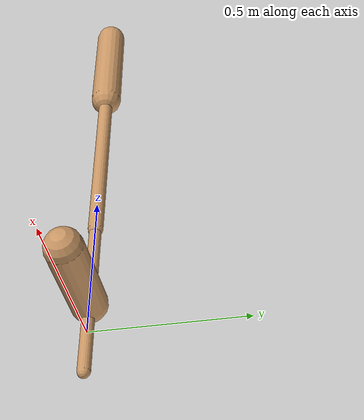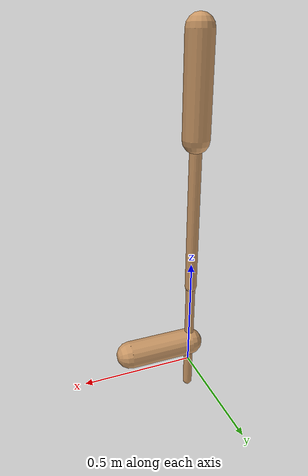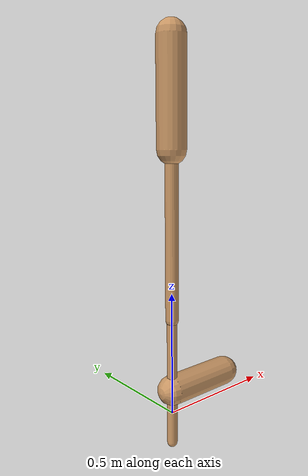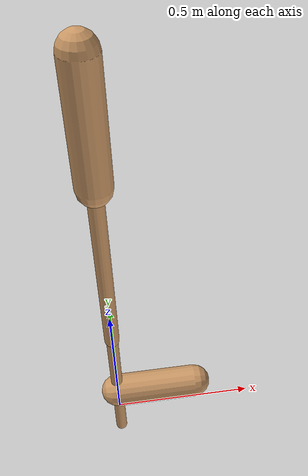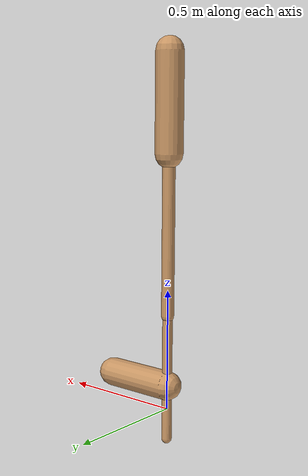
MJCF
<mujoco model="walker2d">
  <compiler angle="degree" coordinate="global" inertiafromgeom="true" />
  <default>
    <joint armature="0.01" damping=".1" limited="true" />
    <geom conaffinity="0" condim="3" contype="1" density="1000" friction="0.8 .1 .1" rgba="0.8 0.6 .4 1" />
  </default>
  <option integrator="RK4" timestep="0.002" />
  <worldbody>

    <body name="torso" pos="0 0 0.4336802725712084">
      <joint armature="0" axis="1 0 0" damping="0" limited="false" name="ignorex" pos="0 0 0" stiffness="0" type="slide" />
      <joint armature="0" axis="0 0 1" damping="0" limited="false" name="ignorez" pos="0 0 0" ref="1.25" stiffness="0" type="slide" />
      <joint armature="0" axis="0 1 0" damping="0" limited="false" name="ignorey" pos="0 0 0" stiffness="0" type="hinge" />
      <geom fromto="0 0 1.45 0 0 1.05" name="torso_geom" size="0.056566294980095556" type="capsule" />
      <body name="thigh">
        <joint axis="0 -1 0" name="thigh_joint" pos="0 0 1.05" range="-150 0" type="hinge" />
        <geom fromto="0.0 0.0 1.05 0.0 0.0 0.3945725024662696" name="thigh_geom" size="0.02587641546885851" type="capsule" />
        <body name="leg" pos="0.0 0.0 -0.20542749753373035">
          <joint axis="0 -1 0" name="leg_joint" pos="0 0 0.6" range="-150 0" type="hinge" />
          <geom fromto="0.0 0.0 0.6 0.0 0.0 -0.1282527750374781" name="leg_geom" size="0.02070113237508681" type="capsule" />
          <body name="foot" pos="0.0 0.0 -0.2282527750374781">
            <joint axis="0 -1 0" name="foot_joint" pos="0 0 0.1" range="-45 45" type="hinge" />
            <geom fromto="-0.0 0.0 0.1 0.2904661562101304 0.0 0.1" name="foot_geom" size="0.05999046526558192" type="capsule" />
          </body>
        </body>
      </body>

      <body name="thigh_left">
        <joint axis="0 -1 0" name="thigh_left_joint" pos="0 0 1.05" range="-150 0" type="hinge" />
        <geom fromto="0.0 0.0 1.05 0.0 0.0 0.3945725024662696" name="thigh_left_geom" rgba=".7 .3 .6 1" size="0.02587641546885851" type="capsule" />
        <body name="leg_left" pos="0.0 0.0 -0.20542749753373035">
          <joint axis="0 -1 0" name="leg_left_joint" pos="0 0 0.6" range="-150 0" type="hinge" />
          <geom fromto="0.0 0.0 0.6 0.0 0.0 -0.1282527750374781" name="leg_left_geom" rgba=".7 .3 .6 1" size="0.02070113237508681" type="capsule" />
          <body name="foot_left" pos="0.0 0.0 -0.2282527750374781">
            <joint axis="0 -1 0" name="foot_left_joint" pos="0 0 0.1" range="-45 45" type="hinge" />
            <geom fromto="-0.0 0.0 0.1 0.2904661562101304 0.0 0.1" name="foot_left_geom" rgba=".7 .3 .6 1" size="0.05999046526558192" type="capsule" />
          </body>
        </body>
      </body>
    </body>
  </worldbody>
  <actuator>

    <motor ctrllimited="true" ctrlrange="-1.0 1.0" gear="100" joint="thigh_joint" />
    <motor ctrllimited="true" ctrlrange="-1.0 1.0" gear="100" joint="leg_joint" />
    <motor ctrllimited="true" ctrlrange="-1.0 1.0" gear="100" joint="foot_joint" />
    <motor ctrllimited="true" ctrlrange="-1.0 1.0" gear="100" joint="thigh_left_joint" />
    <motor ctrllimited="true" ctrlrange="-1.0 1.0" gear="100" joint="leg_left_joint" />
    <motor ctrllimited="true" ctrlrange="-1.0 1.0" gear="100" joint="foot_left_joint" />

  </actuator>
</mujoco>
